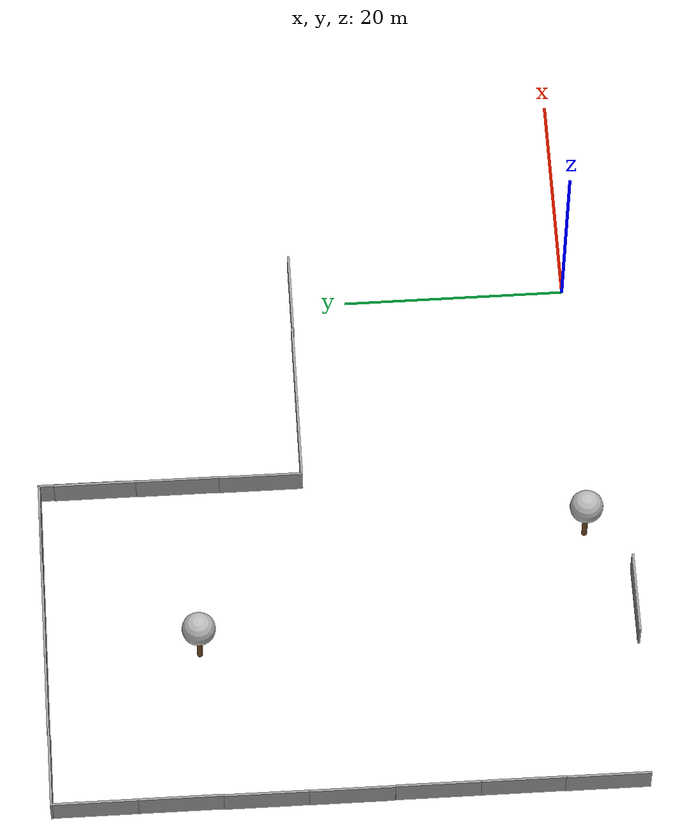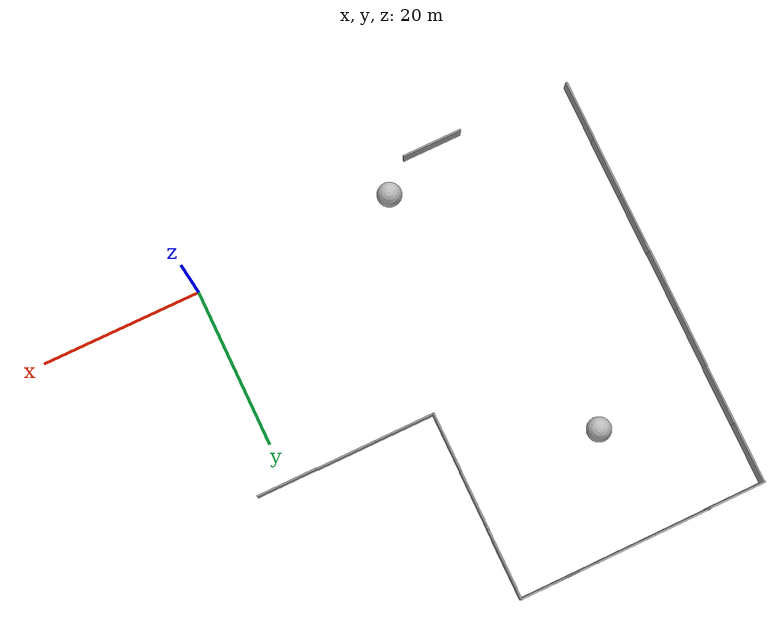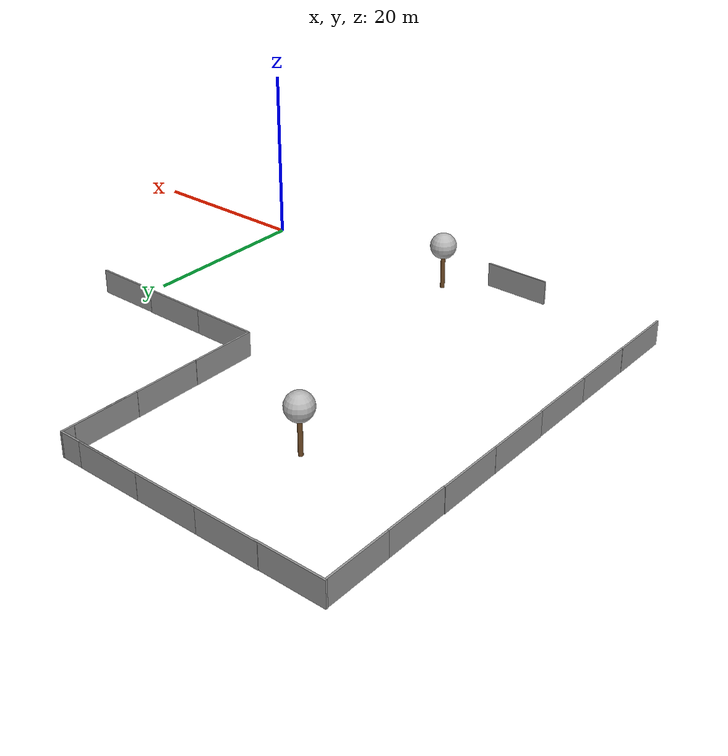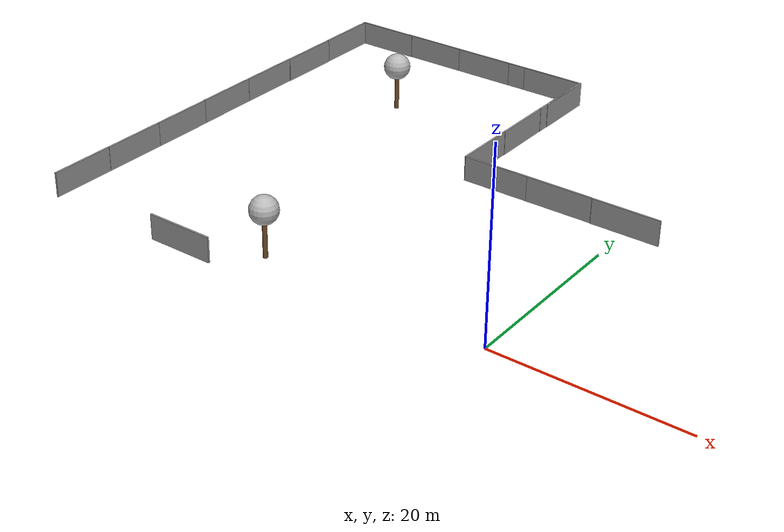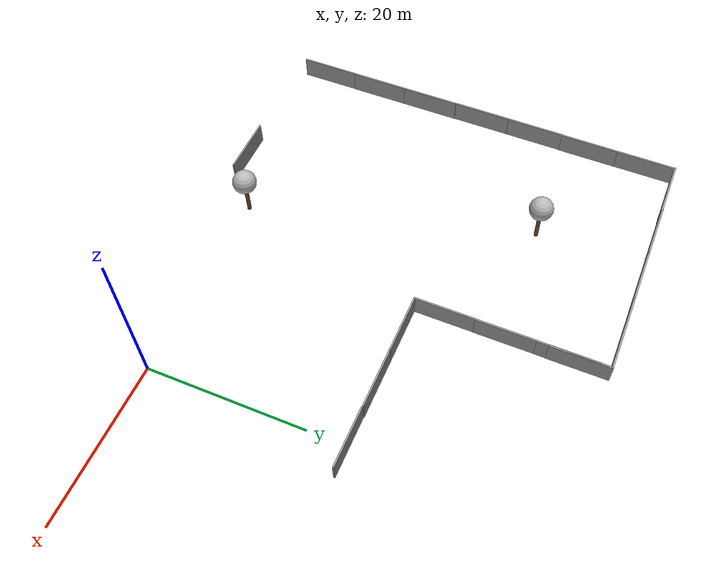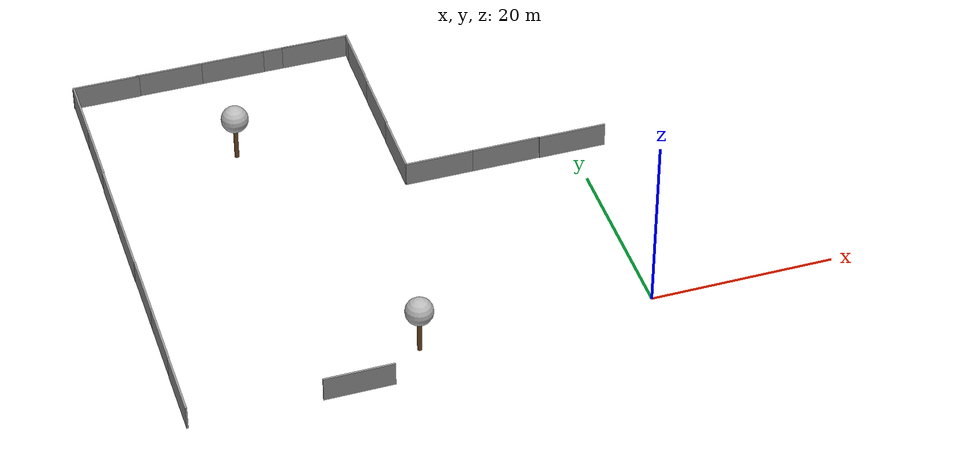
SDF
<sdf version="1.6">
 <world name="default">
  <model name="grey_wall_0">
   <static>1</static>
   <link name="link">
    <pose>0 0 1.4 0 -0 0</pose>
    <collision name="collision"><geometry><box><size>7.5 0.2 2.8</size></box></geometry></collision>
    <visual name="visual">
     <cast_shadows>0</cast_shadows>
     <geometry><box><size>7.5 0.2 2.8</size></box></geometry>
     <material>
      <script>
       <uri>model://grey_wall/materials/scripts</uri>
       <uri>model://grey_wall/materials/textures</uri>
       <name>vrc/grey_wall</name>
      </script>
     </material>
    </visual>
   </link>
   <pose>0 25 0 0 -0 0</pose>
  </model>
  <model name="grey_wall_1_clone">
   <static>1</static>
   <link name="link">
    <pose>0 0 1.4 0 -0 0</pose>
    <collision name="collision"><geometry><box><size>7.5 0.2 2.8</size></box></geometry></collision>
    <visual name="visual">
     <cast_shadows>0</cast_shadows>
     <geometry><box><size>7.5 0.2 2.8</size></box></geometry>
     <material>
      <script>
       <uri>model://grey_wall/materials/scripts</uri>
       <uri>model://grey_wall/materials/textures</uri>
       <name>vrc/grey_wall</name>
      </script>
     </material>
    </visual>
   </link>
   <pose>-50 0 0 0 -0 1.57</pose>
  </model>
  <model name="grey_wall_1_clone_clone_5">
   <static>1</static>
   <link name="link">
    <pose>0 0 1.4 0 -0 0</pose>
    <collision name="collision"><geometry><box><size>7.5 0.2 2.8</size></box></geometry></collision>
    <visual name="visual">
     <cast_shadows>0</cast_shadows>
     <geometry><box><size>7.5 0.2 2.8</size></box></geometry>
     <material>
      <script>
       <uri>model://grey_wall/materials/scripts</uri>
       <uri>model://grey_wall/materials/textures</uri>
       <name>vrc/grey_wall</name>
      </script>
     </material>
    </visual>
   </link>
   <pose>-49.9698 7.44842 0 0 -0 1.57</pose>
  </model>
  <model name="grey_wall_1_clone_clone_6">
   <static>1</static>
   <link name="link">
    <pose>0 0 1.4 0 -0 0</pose>
    <collision name="collision"><geometry><box><size>7.5 0.2 2.8</size></box></geometry></collision>
    <visual name="visual">
     <cast_shadows>0</cast_shadows>
     <geometry><box><size>7.5 0.2 2.8</size></box></geometry>
     <material>
      <script>
       <uri>model://grey_wall/materials/scripts</uri>
       <uri>model://grey_wall/materials/textures</uri>
       <name>vrc/grey_wall</name>
      </script>
     </material>
    </visual>
   </link>
   <pose>-49.9652 14.8689 0 0 -0 1.57</pose>
  </model>
  <model name="grey_wall_1_clone_clone_7">
   <static>1</static>
   <link name="link">
    <pose>0 0 1.4 0 -0 0</pose>
    <collision name="collision"><geometry><box><size>7.5 0.2 2.8</size></box></geometry></collision>
    <visual name="visual">
     <cast_shadows>0</cast_shadows>
     <geometry><box><size>7.5 0.2 2.8</size></box></geometry>
     <material>
      <script>
       <uri>model://grey_wall/materials/scripts</uri>
       <uri>model://grey_wall/materials/textures</uri>
       <name>vrc/grey_wall</name>
      </script>
     </material>
    </visual>
   </link>
   <pose>-49.9949 22.3819 0 0 -0 1.57</pose>
  </model>
  <model name="grey_wall_1_clone_clone_8">
   <static>1</static>
   <link name="link">
    <pose>0 0 1.4 0 -0 0</pose>
    <collision name="collision"><geometry><box><size>7.5 0.2 2.8</size></box></geometry></collision>
    <visual name="visual">
     <cast_shadows>0</cast_shadows>
     <geometry><box><size>7.5 0.2 2.8</size></box></geometry>
     <material>
      <script>
       <uri>model://grey_wall/materials/scripts</uri>
       <uri>model://grey_wall/materials/textures</uri>
       <name>vrc/grey_wall</name>
      </script>
     </material>
    </visual>
   </link>
   <pose>-49.9767 29.8462 0 0 -0 1.57</pose>
  </model>
  <model name="grey_wall_1_clone_clone_9">
   <static>1</static>
   <link name="link">
    <pose>0 0 1.4 0 -0 0</pose>
    <collision name="collision"><geometry><box><size>7.5 0.2 2.8</size></box></geometry></collision>
    <visual name="visual">
     <cast_shadows>0</cast_shadows>
     <geometry><box><size>7.5 0.2 2.8</size></box></geometry>
     <material>
      <script>
       <uri>model://grey_wall/materials/scripts</uri>
       <uri>model://grey_wall/materials/textures</uri>
       <name>vrc/grey_wall</name>
      </script>
     </material>
    </visual>
   </link>
   <pose>-49.9236 37.2825 0 0 -0 1.57</pose>
  </model>
  <model name="grey_wall_1_clone_clone_10">
   <static>1</static>
   <link name="link">
    <pose>0 0 1.4 0 -0 0</pose>
    <collision name="collision"><geometry><box><size>7.5 0.2 2.8</size></box></geometry></collision>
    <visual name="visual">
     <cast_shadows>0</cast_shadows>
     <geometry><box><size>7.5 0.2 2.8</size></box></geometry>
     <material>
      <script>
       <uri>model://grey_wall/materials/scripts</uri>
       <uri>model://grey_wall/materials/textures</uri>
       <name>vrc/grey_wall</name>
      </script>
     </material>
    </visual>
   </link>
   <pose>-49.9256 44.774 0 0 -0 1.57</pose>
  </model>
  <model name="grey_wall_0_clone_1">
   <static>1</static>
   <link name="link">
    <pose>0 0 1.4 0 -0 0</pose>
    <collision name="collision"><geometry><box><size>7.5 0.2 2.8</size></box></geometry></collision>
    <visual name="visual">
     <cast_shadows>0</cast_shadows>
     <geometry><box><size>7.5 0.2 2.8</size></box></geometry>
     <material>
      <script>
       <uri>model://grey_wall/materials/scripts</uri>
       <uri>model://grey_wall/materials/textures</uri>
       <name>vrc/grey_wall</name>
      </script>
     </material>
    </visual>
   </link>
   <pose>-7.57341 25.0553 0 0 -0 0</pose>
  </model>
  <model name="grey_wall_0_clone_2">
   <static>1</static>
   <link name="link">
    <pose>0 0 1.4 0 -0 0</pose>
    <collision name="collision"><geometry><box><size>7.5 0.2 2.8</size></box></geometry></collision>
    <visual name="visual">
     <cast_shadows>0</cast_shadows>
     <geometry><box><size>7.5 0.2 2.8</size></box></geometry>
     <material>
      <script>
       <uri>model://grey_wall/materials/scripts</uri>
       <uri>model://grey_wall/materials/textures</uri>
       <name>vrc/grey_wall</name>
      </script>
     </material>
    </visual>
   </link>
   <pose>-15.0654 25.055 0 0 -0 0</pose>
  </model>
  <model name="grey_wall_0_clone_0_clone_0">
   <static>1</static>
   <link name="link">
    <pose>0 0 1.4 0 -0 0</pose>
    <collision name="collision"><geometry><box><size>7.5 0.2 2.8</size></box></geometry></collision>
    <visual name="visual">
     <cast_shadows>0</cast_shadows>
     <geometry><box><size>7.5 0.2 2.8</size></box></geometry>
     <material>
      <script>
       <uri>model://grey_wall/materials/scripts</uri>
       <uri>model://grey_wall/materials/textures</uri>
       <name>vrc/grey_wall</name>
      </script>
     </material>
    </visual>
   </link>
   <pose>-46.3147 48.5898 0 0 -0 0</pose>
  </model>
  <model name="grey_wall_0_clone_0_clone_1">
   <static>1</static>
   <link name="link">
    <pose>0 0 1.4 0 -0 0</pose>
    <collision name="collision"><geometry><box><size>7.5 0.2 2.8</size></box></geometry></collision>
    <visual name="visual">
     <cast_shadows>0</cast_shadows>
     <geometry><box><size>7.5 0.2 2.8</size></box></geometry>
     <material>
      <script>
       <uri>model://grey_wall/materials/scripts</uri>
       <uri>model://grey_wall/materials/textures</uri>
       <name>vrc/grey_wall</name>
      </script>
     </material>
    </visual>
   </link>
   <pose>-39.2009 48.6375 0 0 -0 0</pose>
  </model>
  <model name="grey_wall_0_clone_0_clone_2">
   <static>1</static>
   <link name="link">
    <pose>0 0 1.4 0 -0 0</pose>
    <collision name="collision"><geometry><box><size>7.5 0.2 2.8</size></box></geometry></collision>
    <visual name="visual">
     <cast_shadows>0</cast_shadows>
     <geometry><box><size>7.5 0.2 2.8</size></box></geometry>
     <material>
      <script>
       <uri>model://grey_wall/materials/scripts</uri>
       <uri>model://grey_wall/materials/textures</uri>
       <name>vrc/grey_wall</name>
      </script>
     </material>
    </visual>
   </link>
   <pose>-32.1036 48.6414 0 0 -0 0</pose>
  </model>
  <model name="grey_wall_0_clone_0_clone_3">
   <static>1</static>
   <link name="link">
    <pose>0 0 1.4 0 -0 0</pose>
    <collision name="collision"><geometry><box><size>7.5 0.2 2.8</size></box></geometry></collision>
    <visual name="visual">
     <cast_shadows>0</cast_shadows>
     <geometry><box><size>7.5 0.2 2.8</size></box></geometry>
     <material>
      <script>
       <uri>model://grey_wall/materials/scripts</uri>
       <uri>model://grey_wall/materials/textures</uri>
       <name>vrc/grey_wall</name>
      </script>
     </material>
    </visual>
   </link>
   <pose>-24.918 48.6507 0 0 -0 0</pose>
  </model>
  <model name="grey_wall_1_clone_clone_22_clone_0_clone">
   <static>1</static>
   <link name="link">
    <pose>0 0 1.4 0 -0 0</pose>
    <collision name="collision"><geometry><box><size>7.5 0.2 2.8</size></box></geometry></collision>
    <visual name="visual">
     <cast_shadows>0</cast_shadows>
     <geometry><box><size>7.5 0.2 2.8</size></box></geometry>
     <material>
      <script>
       <uri>model://grey_wall/materials/scripts</uri>
       <uri>model://grey_wall/materials/textures</uri>
       <name>vrc/grey_wall</name>
      </script>
     </material>
    </visual>
   </link>
   <pose>-18.8003 28.7492 0 0 -0 1.57</pose>
  </model>
  <model name="grey_wall_1_clone_clone_22_clone_0_clone_0">
   <static>1</static>
   <link name="link">
    <pose>0 0 1.4 0 -0 0</pose>
    <collision name="collision"><geometry><box><size>7.5 0.2 2.8</size></box></geometry></collision>
    <visual name="visual">
     <cast_shadows>0</cast_shadows>
     <geometry><box><size>7.5 0.2 2.8</size></box></geometry>
     <material>
      <script>
       <uri>model://grey_wall/materials/scripts</uri>
       <uri>model://grey_wall/materials/textures</uri>
       <name>vrc/grey_wall</name>
      </script>
     </material>
    </visual>
   </link>
   <pose>-18.7629 36.234 0 0 -0 1.57</pose>
  </model>
  <model name="grey_wall_1_clone_clone_22_clone_0_clone_1">
   <static>1</static>
   <link name="link">
    <pose>0 0 1.4 0 -0 0</pose>
    <collision name="collision"><geometry><box><size>7.5 0.2 2.8</size></box></geometry></collision>
    <visual name="visual">
     <cast_shadows>0</cast_shadows>
     <geometry><box><size>7.5 0.2 2.8</size></box></geometry>
     <material>
      <script>
       <uri>model://grey_wall/materials/scripts</uri>
       <uri>model://grey_wall/materials/textures</uri>
       <name>vrc/grey_wall</name>
      </script>
     </material>
    </visual>
   </link>
   <pose>-18.7362 43.586 0 0 -0 1.57</pose>
  </model>
  <model name="grey_wall_1_clone_clone_22_clone_0_clone_2">
   <static>1</static>
   <link name="link">
    <pose>0 0 1.4 0 -0 0</pose>
    <collision name="collision"><geometry><box><size>7.5 0.2 2.8</size></box></geometry></collision>
    <visual name="visual">
     <cast_shadows>0</cast_shadows>
     <geometry><box><size>7.5 0.2 2.8</size></box></geometry>
     <material>
      <script>
       <uri>model://grey_wall/materials/scripts</uri>
       <uri>model://grey_wall/materials/textures</uri>
       <name>vrc/grey_wall</name>
      </script>
     </material>
    </visual>
   </link>
   <pose>-18.6991 45.0127 0 0 -0 1.57</pose>
  </model>
  <model name="grey_wall_0_clone_0_clone_3_clone">
   <static>1</static>
   <link name="link">
    <pose>0 0 1.4 0 -0 0</pose>
    <collision name="collision"><geometry><box><size>7.5 0.2 2.8</size></box></geometry></collision>
    <visual name="visual">
     <cast_shadows>0</cast_shadows>
     <geometry><box><size>7.5 0.2 2.8</size></box></geometry>
     <material>
      <script>
       <uri>model://grey_wall/materials/scripts</uri>
       <uri>model://grey_wall/materials/textures</uri>
       <name>vrc/grey_wall</name>
      </script>
     </material>
    </visual>
   </link>
   <pose>-22.4187 48.6445 0 0 -0 0</pose>
  </model>
  <model name="tree_simple">
   <static>1</static>
   <link name="link">
    <pose>0 0 0.1 0 -0 0</pose>
    <inertial>
     <mass>666</mass>
     <inertia>
      <ixx>0.0861167</ixx>
      <ixy>0</ixy>
      <ixz>0</ixz>
      <iyy>0.0861167</iyy>
      <iyz>0</iyz>
      <izz>0.0861167</izz>
     </inertia>
    </inertial>
    <collision name="collision_trunk">
     <pose>0 0 2 0 -0 0</pose>
     <geometry><cylinder><radius>0.25</radius><length>4</length></cylinder></geometry>
     <surface>
      <contact>
       <poissons_ratio>0.347</poissons_ratio>
       <elastic_modulus>8.8e+09</elastic_modulus>
       <ode><kp>100000</kp><kd>100</kd><max_vel>100</max_vel><min_depth>0.001</min_depth></ode>
      </contact>
      <friction>
       <torsional>
        <coefficient>1</coefficient>
        <use_patch_radius>0</use_patch_radius>
        <surface_radius>0.01</surface_radius>
       </torsional>
      </friction>
     </surface>
    </collision>
    <collision name="collision_treetop">
     <pose>0 0 5.2 0 -0 0</pose>
     <geometry><sphere><radius>1.5</radius></sphere></geometry>
     <surface>
      <contact>
       <poissons_ratio>0.347</poissons_ratio>
       <elastic_modulus>8.8e+09</elastic_modulus>
       <ode><kp>100000</kp><kd>100</kd><max_vel>100</max_vel><min_depth>0.001</min_depth></ode>
      </contact>
      <friction>
       <torsional>
        <coefficient>1</coefficient>
        <use_patch_radius>0</use_patch_radius>
        <surface_radius>0.01</surface_radius>
       </torsional>
      </friction>
     </surface>
    </collision>
    <visual name="trunk">
     <pose>0 0 2 0 -0 0</pose>
     <geometry><cylinder><radius>0.25</radius><length>4</length></cylinder></geometry>
     <material>
      <script>
       <uri>model://tree_simple/scripts</uri>
       <uri>model://tree_simple/materials/textures</uri>
       <name>TreeSimple/Trunk</name>
      </script>
     </material>
    </visual>
    <visual name="treetop">
     <pose>0 0 5.2 0 -0 0</pose>
     <geometry><sphere><radius>1.5</radius></sphere></geometry>
     <material>
      <script>
       <uri>model://tree_simple/scripts</uri>
       <uri>model://tree_simple/materials/textures</uri>
       <name>TreeSimple/Treetop</name>
      </script>
     </material>
    </visual>
   </link>
   <pose>-35 35 0 0 -0 0</pose>
  </model>
  <model name="tree_simple_0">
   <static>1</static>
   <link name="link">
    <pose>0 0 0.1 0 -0 0</pose>
    <inertial>
     <mass>666</mass>
     <inertia>
      <ixx>0.0861167</ixx>
      <ixy>0</ixy>
      <ixz>0</ixz>
      <iyy>0.0861167</iyy>
      <iyz>0</iyz>
      <izz>0.0861167</izz>
     </inertia>
    </inertial>
    <collision name="collision_trunk">
     <pose>0 0 2 0 -0 0</pose>
     <geometry><cylinder><radius>0.25</radius><length>4</length></cylinder></geometry>
     <surface>
      <contact>
       <poissons_ratio>0.347</poissons_ratio>
       <elastic_modulus>8.8e+09</elastic_modulus>
       <ode><kp>100000</kp><kd>100</kd><max_vel>100</max_vel><min_depth>0.001</min_depth></ode>
      </contact>
      <friction>
       <torsional>
        <coefficient>1</coefficient>
        <use_patch_radius>0</use_patch_radius>
        <surface_radius>0.01</surface_radius>
       </torsional>
      </friction>
     </surface>
    </collision>
    <collision name="collision_treetop">
     <pose>0 0 5.2 0 -0 0</pose>
     <geometry><sphere><radius>1.5</radius></sphere></geometry>
     <surface>
      <contact>
       <poissons_ratio>0.347</poissons_ratio>
       <elastic_modulus>8.8e+09</elastic_modulus>
       <ode><kp>100000</kp><kd>100</kd><max_vel>100</max_vel><min_depth>0.001</min_depth></ode>
      </contact>
      <friction>
       <torsional>
        <coefficient>1</coefficient>
        <use_patch_radius>0</use_patch_radius>
        <surface_radius>0.01</surface_radius>
       </torsional>
      </friction>
     </surface>
    </collision>
    <visual name="trunk">
     <pose>0 0 2 0 -0 0</pose>
     <geometry><cylinder><radius>0.25</radius><length>4</length></cylinder></geometry>
     <material>
      <script>
       <uri>model://tree_simple/scripts</uri>
       <uri>model://tree_simple/materials/textures</uri>
       <name>TreeSimple/Trunk</name>
      </script>
     </material>
    </visual>
    <visual name="treetop">
     <pose>0 0 5.2 0 -0 0</pose>
     <geometry><sphere><radius>1.5</radius></sphere></geometry>
     <material>
      <script>
       <uri>model://tree_simple/scripts</uri>
       <uri>model://tree_simple/materials/textures</uri>
       <name>TreeSimple/Treetop</name>
      </script>
     </material>
    </visual>
   </link>
   <pose>-25 0 0 0 -0 0</pose>
  </model>
  <model name="grey_wall_clone_1_clone_clone">
   <static>1</static>
   <link name="link">
    <pose>0 0 1.4 0 -0 0</pose>
    <collision name="collision"><geometry><box><size>7.5 0.2 2.8</size></box></geometry></collision>
    <visual name="visual">
     <cast_shadows>0</cast_shadows>
     <geometry><box><size>7.5 0.2 2.8</size></box></geometry>
     <material>
      <script>
       <uri>model://grey_wall/materials/scripts</uri>
       <uri>model://grey_wall/materials/textures</uri>
       <name>vrc/grey_wall</name>
      </script>
     </material>
    </visual>
   </link>
   <pose>-32.4438 -3.93177 0 0 -0 0</pose>
  </model>
 </world>
</sdf>
